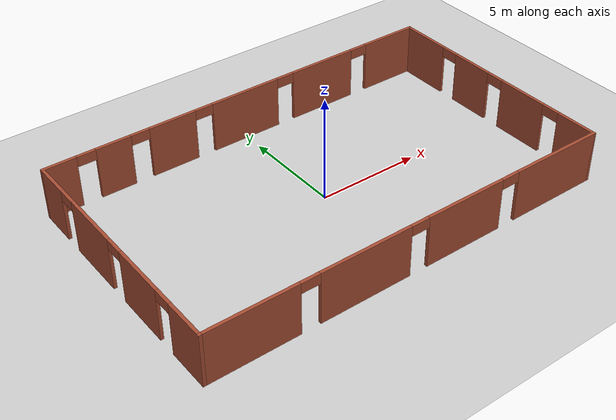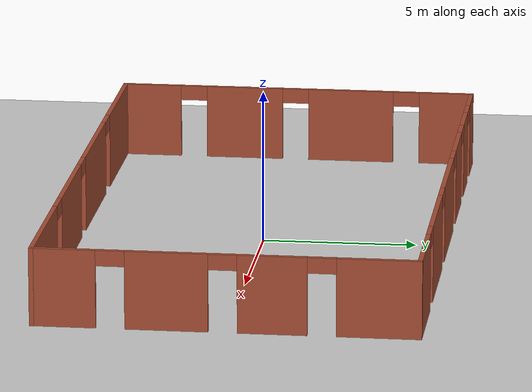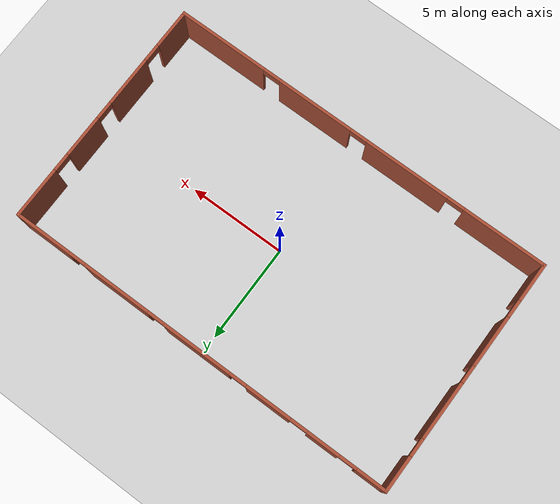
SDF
<sdf version="1.7">
 <world name="default">
  <light name="sun" type="directional">
   <pose>0 0 10 0 -0 0</pose>
   <diffuse>0.8 0.8 0.8 1</diffuse>
   <specular>0.2 0.2 0.2 1</specular>
   <attenuation>
    <range>1000</range>
    <constant>0.9</constant>
    <linear>0.01</linear>
    <quadratic>0.001</quadratic>
   </attenuation>
   <direction>-0.5 0.1 -0.9</direction>
   <spot><inner_angle>0</inner_angle><outer_angle>0</outer_angle><falloff>0</falloff></spot>
  </light>
  <model name="ground_plane">
   <static>1</static>
   <link name="link">
    <collision name="collision">
     <geometry><plane><normal>0 0 1</normal><size>100 100</size></plane></geometry>
     <surface><friction><ode><mu>100</mu><mu2>50</mu2></ode></friction></surface>
    </collision>
    <visual name="visual">
     <cast_shadows>0</cast_shadows>
     <geometry><plane><normal>0 0 1</normal><size>100 100</size></plane></geometry>
     <material>
      <script><uri>file://media/materials/scripts/gazebo.material</uri><name>Gazebo/Grey</name></script>
     </material>
    </visual>
   </link>
  </model>
  <gravity>0 0 -9.8</gravity>
  <magnetic_field>6e-06 2.3e-05 -4.2e-05</magnetic_field>
  <atmosphere type="adiabatic"/>
  <physics type="ode">
   <max_step_size>0.001</max_step_size>
   <real_time_factor>1</real_time_factor>
   <real_time_update_rate>1000</real_time_update_rate>
  </physics>
  <scene><ambient>0.4 0.4 0.4 1</ambient><background>0.7 0.7 0.7 1</background><shadows>1</shadows></scene>
  <audio><device>default</device></audio>
  <spherical_coordinates>
   <surface_model>EARTH_WGS84</surface_model>
   <latitude_deg>0</latitude_deg>
   <longitude_deg>0</longitude_deg>
   <elevation>0</elevation>
   <heading_deg>0</heading_deg>
  </spherical_coordinates>
  <model name="hall">
   <link name="Wall_12">
    <pose>0 6 0 0 -0 0</pose>
    <visual name="Wall_12_Visual_0">
     <pose>-9.28034 0 1.25 0 -0 0</pose>
     <geometry><box><size>1.58932 0.15 2.5</size></box></geometry>
     <material>
      <script><uri>file://media/materials/scripts/gazebo.material</uri><name>Gazebo/Bricks</name></script>
      <ambient>1 1 1 1</ambient>
     </material>
     <meta><layer>0</layer></meta>
    </visual>
    <collision name="Wall_12_Collision_0">
     <geometry><box><size>1.58932 0.15 2.5</size></box></geometry>
     <pose>-9.28034 0 1.25 0 -0 0</pose>
    </collision>
    <visual name="Wall_12_Visual_1">
     <pose>-6.74557 0 1.25 0 -0 0</pose>
     <geometry><box><size>1.68022 0.15 2.5</size></box></geometry>
     <material>
      <script><uri>file://media/materials/scripts/gazebo.material</uri><name>Gazebo/Bricks</name></script>
      <ambient>1 1 1 1</ambient>
     </material>
     <meta><layer>0</layer></meta>
    </visual>
    <collision name="Wall_12_Collision_1">
     <geometry><box><size>1.68022 0.15 2.5</size></box></geometry>
     <pose>-6.74557 0 1.25 0 -0 0</pose>
    </collision>
    <visual name="Wall_12_Visual_2">
     <pose>-3.83285 0 1.25 0 -0 0</pose>
     <geometry><box><size>2.34522 0.15 2.5</size></box></geometry>
     <material>
      <script><uri>file://media/materials/scripts/gazebo.material</uri><name>Gazebo/Bricks</name></script>
      <ambient>1 1 1 1</ambient>
     </material>
     <meta><layer>0</layer></meta>
    </visual>
    <collision name="Wall_12_Collision_2">
     <geometry><box><size>2.34522 0.15 2.5</size></box></geometry>
     <pose>-3.83285 0 1.25 0 -0 0</pose>
    </collision>
    <visual name="Wall_12_Visual_3">
     <pose>0.024175 0 1.25 0 -0 0</pose>
     <geometry><box><size>3.56883 0.15 2.5</size></box></geometry>
     <material>
      <script><uri>file://media/materials/scripts/gazebo.material</uri><name>Gazebo/Bricks</name></script>
      <ambient>1 1 1 1</ambient>
     </material>
     <meta><layer>0</layer></meta>
    </visual>
    <collision name="Wall_12_Collision_3">
     <geometry><box><size>3.56883 0.15 2.5</size></box></geometry>
     <pose>0.024175 0 1.25 0 -0 0</pose>
    </collision>
    <visual name="Wall_12_Visual_4">
     <pose>4.45311 0 1.25 0 -0 0</pose>
     <geometry><box><size>3.48903 0.15 2.5</size></box></geometry>
     <material>
      <script><uri>file://media/materials/scripts/gazebo.material</uri><name>Gazebo/Bricks</name></script>
      <ambient>1 1 1 1</ambient>
     </material>
     <meta><layer>0</layer></meta>
    </visual>
    <collision name="Wall_12_Collision_4">
     <geometry><box><size>3.48903 0.15 2.5</size></box></geometry>
     <pose>4.45311 0 1.25 0 -0 0</pose>
    </collision>
    <visual name="Wall_12_Visual_5">
     <pose>8.58631 0 1.25 0 -0 0</pose>
     <geometry><box><size>2.97737 0.15 2.5</size></box></geometry>
     <material>
      <script><uri>file://media/materials/scripts/gazebo.material</uri><name>Gazebo/Bricks</name></script>
      <ambient>1 1 1 1</ambient>
     </material>
     <meta><layer>0</layer></meta>
    </visual>
    <collision name="Wall_12_Collision_5">
     <geometry><box><size>2.97737 0.15 2.5</size></box></geometry>
     <pose>8.58631 0 1.25 0 -0 0</pose>
    </collision>
    <visual name="Wall_12_Visual_6">
     <pose>-8.03569 0 2.25 0 -0 0</pose>
     <geometry><box><size>0.9 0.15 0.5</size></box></geometry>
     <material>
      <script><uri>file://media/materials/scripts/gazebo.material</uri><name>Gazebo/Bricks</name></script>
      <ambient>1 1 1 1</ambient>
     </material>
     <meta><layer>0</layer></meta>
    </visual>
    <collision name="Wall_12_Collision_6">
     <geometry><box><size>0.9 0.15 0.5</size></box></geometry>
     <pose>-8.03569 0 2.25 0 -0 0</pose>
    </collision>
    <visual name="Wall_12_Visual_7">
     <pose>-5.45547 0 2.25 0 -0 0</pose>
     <geometry><box><size>0.9 0.15 0.5</size></box></geometry>
     <material>
      <script><uri>file://media/materials/scripts/gazebo.material</uri><name>Gazebo/Bricks</name></script>
      <ambient>1 1 1 1</ambient>
     </material>
     <meta><layer>0</layer></meta>
    </visual>
    <collision name="Wall_12_Collision_7">
     <geometry><box><size>0.9 0.15 0.5</size></box></geometry>
     <pose>-5.45547 0 2.25 0 -0 0</pose>
    </collision>
    <visual name="Wall_12_Visual_8">
     <pose>-2.21024 0 2.25 0 -0 0</pose>
     <geometry><box><size>0.9 0.15 0.5</size></box></geometry>
     <material>
      <script><uri>file://media/materials/scripts/gazebo.material</uri><name>Gazebo/Bricks</name></script>
      <ambient>1 1 1 1</ambient>
     </material>
     <meta><layer>0</layer></meta>
    </visual>
    <collision name="Wall_12_Collision_8">
     <geometry><box><size>0.9 0.15 0.5</size></box></geometry>
     <pose>-2.21024 0 2.25 0 -0 0</pose>
    </collision>
    <visual name="Wall_12_Visual_9">
     <pose>2.25859 0 2.25 0 -0 0</pose>
     <geometry><box><size>0.9 0.15 0.5</size></box></geometry>
     <material>
      <script><uri>file://media/materials/scripts/gazebo.material</uri><name>Gazebo/Bricks</name></script>
      <ambient>1 1 1 1</ambient>
     </material>
     <meta><layer>0</layer></meta>
    </visual>
    <collision name="Wall_12_Collision_9">
     <geometry><box><size>0.9 0.15 0.5</size></box></geometry>
     <pose>2.25859 0 2.25 0 -0 0</pose>
    </collision>
    <visual name="Wall_12_Visual_10">
     <pose>6.64762 0 2.25 0 -0 0</pose>
     <geometry><box><size>0.9 0.15 0.5</size></box></geometry>
     <material>
      <script><uri>file://media/materials/scripts/gazebo.material</uri><name>Gazebo/Bricks</name></script>
      <ambient>1 1 1 1</ambient>
     </material>
     <meta><layer>0</layer></meta>
    </visual>
    <collision name="Wall_12_Collision_10">
     <geometry><box><size>0.9 0.15 0.5</size></box></geometry>
     <pose>6.64762 0 2.25 0 -0 0</pose>
    </collision>
   </link>
   <link name="Wall_14">
    <pose>10 0 0 0 -0 -1.5708</pose>
    <visual name="Wall_14_Visual_0">
     <pose>-4.75859 0 1.25 0 -0 0</pose>
     <geometry><box><size>2.63283 0.15 2.5</size></box></geometry>
     <material>
      <script><uri>file://media/materials/scripts/gazebo.material</uri><name>Gazebo/Bricks</name></script>
      <ambient>1 1 1 1</ambient>
     </material>
     <meta><layer>0</layer></meta>
    </visual>
    <collision name="Wall_14_Collision_0">
     <geometry><box><size>2.63283 0.15 2.5</size></box></geometry>
     <pose>-4.75859 0 1.25 0 -0 0</pose>
    </collision>
    <visual name="Wall_14_Visual_1">
     <pose>-1.46266 0 1.25 0 -0 0</pose>
     <geometry><box><size>2.15902 0.15 2.5</size></box></geometry>
     <material>
      <script><uri>file://media/materials/scripts/gazebo.material</uri><name>Gazebo/Bricks</name></script>
      <ambient>1 1 1 1</ambient>
     </material>
     <meta><layer>0</layer></meta>
    </visual>
    <collision name="Wall_14_Collision_1">
     <geometry><box><size>2.15902 0.15 2.5</size></box></geometry>
     <pose>-1.46266 0 1.25 0 -0 0</pose>
    </collision>
    <visual name="Wall_14_Visual_2">
     <pose>1.80916 0 1.25 0 -0 0</pose>
     <geometry><box><size>2.58463 0.15 2.5</size></box></geometry>
     <material>
      <script><uri>file://media/materials/scripts/gazebo.material</uri><name>Gazebo/Bricks</name></script>
      <ambient>1 1 1 1</ambient>
     </material>
     <meta><layer>0</layer></meta>
    </visual>
    <collision name="Wall_14_Collision_2">
     <geometry><box><size>2.58463 0.15 2.5</size></box></geometry>
     <pose>1.80916 0 1.25 0 -0 0</pose>
    </collision>
    <visual name="Wall_14_Visual_3">
     <pose>5.03824 0 1.25 0 -0 0</pose>
     <geometry><box><size>2.07352 0.15 2.5</size></box></geometry>
     <material>
      <script><uri>file://media/materials/scripts/gazebo.material</uri><name>Gazebo/Bricks</name></script>
      <ambient>1 1 1 1</ambient>
     </material>
     <meta><layer>0</layer></meta>
    </visual>
    <collision name="Wall_14_Collision_3">
     <geometry><box><size>2.07352 0.15 2.5</size></box></geometry>
     <pose>5.03824 0 1.25 0 -0 0</pose>
    </collision>
    <visual name="Wall_14_Visual_4">
     <pose>-2.99217 0 2.25 0 -0 0</pose>
     <geometry><box><size>0.9 0.15 0.5</size></box></geometry>
     <material>
      <script><uri>file://media/materials/scripts/gazebo.material</uri><name>Gazebo/Bricks</name></script>
      <ambient>1 1 1 1</ambient>
     </material>
     <meta><layer>0</layer></meta>
    </visual>
    <collision name="Wall_14_Collision_4">
     <geometry><box><size>0.9 0.15 0.5</size></box></geometry>
     <pose>-2.99217 0 2.25 0 -0 0</pose>
    </collision>
    <visual name="Wall_14_Visual_5">
     <pose>0.066852 0 2.25 0 -0 0</pose>
     <geometry><box><size>0.9 0.15 0.5</size></box></geometry>
     <material>
      <script><uri>file://media/materials/scripts/gazebo.material</uri><name>Gazebo/Bricks</name></script>
      <ambient>1 1 1 1</ambient>
     </material>
     <meta><layer>0</layer></meta>
    </visual>
    <collision name="Wall_14_Collision_5">
     <geometry><box><size>0.9 0.15 0.5</size></box></geometry>
     <pose>0.066852 0 2.25 0 -0 0</pose>
    </collision>
    <visual name="Wall_14_Visual_6">
     <pose>3.55148 0 2.25 0 -0 0</pose>
     <geometry><box><size>0.9 0.15 0.5</size></box></geometry>
     <material>
      <script><uri>file://media/materials/scripts/gazebo.material</uri><name>Gazebo/Bricks</name></script>
      <ambient>1 1 1 1</ambient>
     </material>
     <meta><layer>0</layer></meta>
    </visual>
    <collision name="Wall_14_Collision_6">
     <geometry><box><size>0.9 0.15 0.5</size></box></geometry>
     <pose>3.55148 0 2.25 0 -0 0</pose>
    </collision>
   </link>
   <link name="Wall_7">
    <pose>-10 0 0 0 -0 -1.5708</pose>
    <visual name="Wall_7_Visual_0">
     <pose>-5.14429 0 1.25 0 -0 0</pose>
     <geometry><box><size>1.86142 0.15 2.5</size></box></geometry>
     <material>
      <script><uri>file://media/materials/scripts/gazebo.material</uri><name>Gazebo/Bricks</name></script>
      <ambient>1 1 1 1</ambient>
     </material>
     <meta><layer>0</layer></meta>
    </visual>
    <collision name="Wall_7_Collision_0">
     <geometry><box><size>1.86142 0.15 2.5</size></box></geometry>
     <pose>-5.14429 0 1.25 0 -0 0</pose>
    </collision>
    <visual name="Wall_7_Visual_1">
     <pose>-1.84836 0 1.25 0 -0 0</pose>
     <geometry><box><size>2.93043 0.15 2.5</size></box></geometry>
     <material>
      <script><uri>file://media/materials/scripts/gazebo.material</uri><name>Gazebo/Bricks</name></script>
      <ambient>1 1 1 1</ambient>
     </material>
     <meta><layer>0</layer></meta>
    </visual>
    <collision name="Wall_7_Collision_1">
     <geometry><box><size>2.93043 0.15 2.5</size></box></geometry>
     <pose>-1.84836 0 1.25 0 -0 0</pose>
    </collision>
    <visual name="Wall_7_Visual_2">
     <pose>1.83577 0 1.25 0 -0 0</pose>
     <geometry><box><size>2.63783 0.15 2.5</size></box></geometry>
     <material>
      <script><uri>file://media/materials/scripts/gazebo.material</uri><name>Gazebo/Bricks</name></script>
      <ambient>1 1 1 1</ambient>
     </material>
     <meta><layer>0</layer></meta>
    </visual>
    <collision name="Wall_7_Collision_2">
     <geometry><box><size>2.63783 0.15 2.5</size></box></geometry>
     <pose>1.83577 0 1.25 0 -0 0</pose>
    </collision>
    <visual name="Wall_7_Visual_3">
     <pose>5.06484 0 1.25 0 -0 0</pose>
     <geometry><box><size>2.02032 0.15 2.5</size></box></geometry>
     <material>
      <script><uri>file://media/materials/scripts/gazebo.material</uri><name>Gazebo/Bricks</name></script>
      <ambient>1 1 1 1</ambient>
     </material>
     <meta><layer>0</layer></meta>
    </visual>
    <collision name="Wall_7_Collision_3">
     <geometry><box><size>2.02032 0.15 2.5</size></box></geometry>
     <pose>5.06484 0 1.25 0 -0 0</pose>
    </collision>
    <visual name="Wall_7_Visual_4">
     <pose>-3.76358 0 2.25 0 -0 0</pose>
     <geometry><box><size>0.9 0.15 0.5</size></box></geometry>
     <material>
      <script><uri>file://media/materials/scripts/gazebo.material</uri><name>Gazebo/Bricks</name></script>
      <ambient>1 1 1 1</ambient>
     </material>
     <meta><layer>0</layer></meta>
    </visual>
    <collision name="Wall_7_Collision_4">
     <geometry><box><size>0.9 0.15 0.5</size></box></geometry>
     <pose>-3.76358 0 2.25 0 -0 0</pose>
    </collision>
    <visual name="Wall_7_Visual_5">
     <pose>0.066852 0 2.25 0 -0 0</pose>
     <geometry><box><size>0.9 0.15 0.5</size></box></geometry>
     <material>
      <script><uri>file://media/materials/scripts/gazebo.material</uri><name>Gazebo/Bricks</name></script>
      <ambient>1 1 1 1</ambient>
     </material>
     <meta><layer>0</layer></meta>
    </visual>
    <collision name="Wall_7_Collision_5">
     <geometry><box><size>0.9 0.15 0.5</size></box></geometry>
     <pose>0.066852 0 2.25 0 -0 0</pose>
    </collision>
    <visual name="Wall_7_Visual_6">
     <pose>3.60468 0 2.25 0 -0 0</pose>
     <geometry><box><size>0.9 0.15 0.5</size></box></geometry>
     <material>
      <script><uri>file://media/materials/scripts/gazebo.material</uri><name>Gazebo/Bricks</name></script>
      <ambient>1 1 1 1</ambient>
     </material>
     <meta><layer>0</layer></meta>
    </visual>
    <collision name="Wall_7_Collision_6">
     <geometry><box><size>0.9 0.15 0.5</size></box></geometry>
     <pose>3.60468 0 2.25 0 -0 0</pose>
    </collision>
   </link>
   <link name="Wall_9">
    <pose>0 -6 0 0 -0 0</pose>
    <visual name="Wall_9_Visual_0">
     <pose>-7.91043 0 1.25 0 -0 0</pose>
     <geometry><box><size>4.32914 0.15 2.5</size></box></geometry>
     <material>
      <script><uri>file://media/materials/scripts/gazebo.material</uri><name>Gazebo/Bricks</name></script>
      <ambient>1 1 1 1</ambient>
     </material>
     <meta><layer>0</layer></meta>
    </visual>
    <collision name="Wall_9_Collision_0">
     <geometry><box><size>4.32914 0.15 2.5</size></box></geometry>
     <pose>-7.91043 0 1.25 0 -0 0</pose>
    </collision>
    <visual name="Wall_9_Visual_1">
     <pose>-2.63584 0 1.25 0 -0 0</pose>
     <geometry><box><size>4.42004 0.15 2.5</size></box></geometry>
     <material>
      <script><uri>file://media/materials/scripts/gazebo.material</uri><name>Gazebo/Bricks</name></script>
      <ambient>1 1 1 1</ambient>
     </material>
     <meta><layer>0</layer></meta>
    </visual>
    <collision name="Wall_9_Collision_1">
     <geometry><box><size>4.42004 0.15 2.5</size></box></geometry>
     <pose>-2.63584 0 1.25 0 -0 0</pose>
    </collision>
    <visual name="Wall_9_Visual_2">
     <pose>2.47139 0 1.25 0 -0 0</pose>
     <geometry><box><size>3.99444 0.15 2.5</size></box></geometry>
     <material>
      <script><uri>file://media/materials/scripts/gazebo.material</uri><name>Gazebo/Bricks</name></script>
      <ambient>1 1 1 1</ambient>
     </material>
     <meta><layer>0</layer></meta>
    </visual>
    <collision name="Wall_9_Collision_2">
     <geometry><box><size>3.99444 0.15 2.5</size></box></geometry>
     <pose>2.47139 0 1.25 0 -0 0</pose>
    </collision>
    <visual name="Wall_9_Visual_3">
     <pose>7.72181 0 1.25 0 -0 0</pose>
     <geometry><box><size>4.70639 0.15 2.5</size></box></geometry>
     <material>
      <script><uri>file://media/materials/scripts/gazebo.material</uri><name>Gazebo/Bricks</name></script>
      <ambient>1 1 1 1</ambient>
     </material>
     <meta><layer>0</layer></meta>
    </visual>
    <collision name="Wall_9_Collision_3">
     <geometry><box><size>4.70639 0.15 2.5</size></box></geometry>
     <pose>7.72181 0 1.25 0 -0 0</pose>
    </collision>
    <visual name="Wall_9_Visual_4">
     <pose>-5.29586 0 2.25 0 -0 0</pose>
     <geometry><box><size>0.9 0.15 0.5</size></box></geometry>
     <material>
      <script><uri>file://media/materials/scripts/gazebo.material</uri><name>Gazebo/Bricks</name></script>
      <ambient>1 1 1 1</ambient>
     </material>
     <meta><layer>0</layer></meta>
    </visual>
    <collision name="Wall_9_Collision_4">
     <geometry><box><size>0.9 0.15 0.5</size></box></geometry>
     <pose>-5.29586 0 2.25 0 -0 0</pose>
    </collision>
    <visual name="Wall_9_Visual_5">
     <pose>0.024175 0 2.25 0 -0 0</pose>
     <geometry><box><size>0.9 0.15 0.5</size></box></geometry>
     <material>
      <script><uri>file://media/materials/scripts/gazebo.material</uri><name>Gazebo/Bricks</name></script>
      <ambient>1 1 1 1</ambient>
     </material>
     <meta><layer>0</layer></meta>
    </visual>
    <collision name="Wall_9_Collision_5">
     <geometry><box><size>0.9 0.15 0.5</size></box></geometry>
     <pose>0.024175 0 2.25 0 -0 0</pose>
    </collision>
    <visual name="Wall_9_Visual_6">
     <pose>4.91861 0 2.25 0 -0 0</pose>
     <geometry><box><size>0.9 0.15 0.5</size></box></geometry>
     <material>
      <script><uri>file://media/materials/scripts/gazebo.material</uri><name>Gazebo/Bricks</name></script>
      <ambient>1 1 1 1</ambient>
     </material>
     <meta><layer>0</layer></meta>
    </visual>
    <collision name="Wall_9_Collision_6">
     <geometry><box><size>0.9 0.15 0.5</size></box></geometry>
     <pose>4.91861 0 2.25 0 -0 0</pose>
    </collision>
   </link>
   <static>1</static>
  </model>
 </world>
</sdf>
